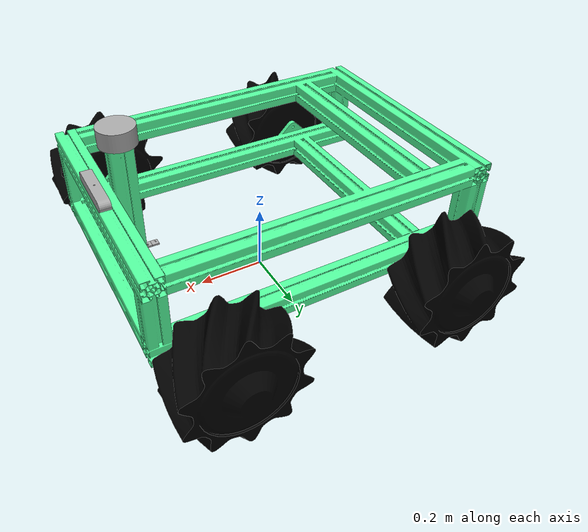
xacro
<?xml version="1.0"?>
<robot
  name="shigu">
  <link
    name="base_link">
    <inertial>
      <origin
        xyz="-0.010323 7.299E-08 0.083361"
        rpy="0 0 0" />
      <mass
        value="22.952" />
      <inertia
        ixx="0.32518"
        ixy="-2.7552E-14"
        ixz="6.3797E-12"
        iyy="0.75236"
        iyz="-3.0488E-13"
        izz="1.0394" />
    </inertial>
    <visual>
      <origin
        xyz="0 0 0"
        rpy="0 0 0" />
      <geometry>
        <mesh
          filename="/home/sjtu/zjd/ShiGu_ros2/src/shigu2_description/meshes/20210826/base_link.STL" />
      </geometry>
      <material
        name="">
        <color
          rgba="84 255 159 1" />
      </material>
    </visual>
    <collision>
      <origin
        xyz="0 0 0"
        rpy="0 0 0" />
      <geometry>
        <mesh
          filename="/home/sjtu/zjd/ShiGu_ros2/src/shigu2_description/meshes/20210826/base_link.STL" />
      </geometry>
    </collision>
  </link>

    <!-- Base footprint is on the ground under the robot -->
  <link name="base_footprint"/>

  <joint name="base_footprint_joint" type="fixed">
    <origin xyz="0 0 0.2" rpy="0 0 0" />
    <parent link="base_footprint" />
    <child link="base_link" />
  </joint>

  <!-- Inertial link stores the robot's inertial information -->
  <link name="inertial_link">
    <inertial>
      <mass value="46.034" />
      <origin xyz="-0.00065 -0.085 0.062" />
      <inertia ixx="0.6022" ixy="-0.02364" ixz="-0.1197" iyy="1.7386" iyz="-0.001544" izz="2.0296" />
    </inertial>
  </link>

  <joint name="inertial_joint" type="fixed">
    <origin xyz="0 0 0" rpy="0 0 0" />
    <parent link="base_link" />
    <child link="inertial_link" />
  </joint>

  <link
    name="front_left_Link">
    <inertial>
      <origin
        xyz="-2.2204E-16 0.077449 -2.2204E-16"
        rpy="0 0 0" />
      <mass
        value="26.853" />
      <inertia
        ixx="0.1921"
        ixy="-4.7186E-16"
        ixz="1.2875E-10"
        iyy="0.27647"
        iyz="2.3229E-16"
        izz="0.1921" />
    </inertial>
    <visual>
      <origin
        xyz="0 0 0"
        rpy="0 0 0" />
      <geometry>
        <mesh
          filename="/home/sjtu/zjd/ShiGu_ros2/src/shigu2_description/meshes/20210826/front_left_Link.STL" />
      </geometry>
      <material
        name="">
        <color
          rgba="0 0 0 1" />
      </material>
    </visual>
    <collision>
      <origin
        xyz="0 0 0"
        rpy="0 0 0" />
      <geometry>
        <mesh
          filename="/home/sjtu/zjd/ShiGu_ros2/src/shigu2_description/meshes/20210826/front_left_Link.STL" />
      </geometry>
    </collision>
  </link>
  <joint
    name="front_left_joint"
    type="continuous">
    <origin
      xyz="0.32272 0.406 -0.021887"
      rpy="0 0 0" />
    <parent
      link="base_link" />
    <child
      link="front_left_Link" />
    <axis
      xyz="0 1 0" />
  </joint>
  <link
    name="front_right_Link">
    <inertial>
      <origin
        xyz="0 -0.077449 -1.1102E-16"
        rpy="0 0 0" />
      <mass
        value="26.853" />
      <inertia
        ixx="0.1921"
        ixy="-4.5762E-16"
        ixz="-9.8199E-11"
        iyy="0.27647"
        iyz="-4.425E-16"
        izz="0.1921" />
    </inertial>
    <visual>
      <origin
        xyz="0 0 0"
        rpy="0 0 0" />
      <geometry>
        <mesh
          filename="/home/sjtu/zjd/ShiGu_ros2/src/shigu2_description/meshes/20210826/front_right_Link.STL" />
      </geometry>
      <material
        name="">
        <color
          rgba="0 0 0 1" />
      </material>
    </visual>
    <collision>
      <origin
        xyz="0 0 0"
        rpy="0 0 0" />
      <geometry>
        <mesh
          filename="/home/sjtu/zjd/ShiGu_ros2/src/shigu2_description/meshes/20210826/front_right_Link.STL" />
      </geometry>
    </collision>
  </link>
  <joint
    name="front_right_joint"
    type="continuous">
    <origin
      xyz="0.32272 -0.406 -0.021887"
      rpy="0 0 0" />
    <parent
      link="base_link" />
    <child
      link="front_right_Link" />
    <axis
      xyz="0 1 0" />
  </joint>
  <link
    name="rear_left_Link">
    <inertial>
      <origin
        xyz="0 0.077449 -1.1102E-16"
        rpy="0 0 0" />
      <mass
        value="26.853" />
      <inertia
        ixx="0.1921"
        ixy="3.6944E-16"
        ixz="-6.0088E-11"
        iyy="0.27647"
        iyz="5.305E-16"
        izz="0.1921" />
    </inertial>
    <visual>
      <origin
        xyz="0 0 0"
        rpy="0 0 0" />
      <geometry>
        <mesh
          filename="/home/sjtu/zjd/ShiGu_ros2/src/shigu2_description/meshes/20210826/rear_left_Link.STL" />
      </geometry>
      <material
        name="">
        <color
          rgba="0 0 0 1" />
      </material>
    </visual>
    <collision>
      <origin
        xyz="0 0 0"
        rpy="0 0 0" />
      <geometry>
        <mesh
          filename="/home/sjtu/zjd/ShiGu_ros2/src/shigu2_description/meshes/20210826/rear_left_Link.STL" />
      </geometry>
    </collision>
  </link>
  <joint
    name="rear_left_joint"
    type="continuous">
    <origin
      xyz="-0.32744 0.406 -0.021788"
      rpy="0 0 0" />
    <parent
      link="base_link" />
    <child
      link="rear_left_Link" />
    <axis
      xyz="0 1 0" />
  </joint>
  <link
    name="rear_right_Link">
    <inertial>
      <origin
        xyz="0 -0.077449 1.1102E-16"
        rpy="0 0 0" />
      <mass
        value="26.853" />
      <inertia
        ixx="0.1921"
        ixy="3.2556E-16"
        ixz="-1.1109E-10"
        iyy="0.27647"
        iyz="4.2064E-16"
        izz="0.1921" />
    </inertial>
    <visual>
      <origin
        xyz="0 0 0"
        rpy="0 0 0" />
      <geometry>
        <mesh
          filename="/home/sjtu/zjd/ShiGu_ros2/src/shigu2_description/meshes/20210826/rear_right_Link.STL" />
      </geometry>
      <material
        name="">
        <color
          rgba="0 0 0 1" />
      </material>
    </visual>
    <collision>
      <origin
        xyz="0 0 0"
        rpy="0 0 0" />
      <geometry>
        <mesh
          filename="/home/sjtu/zjd/ShiGu_ros2/src/shigu2_description/meshes/20210826/rear_right_Link.STL" />
      </geometry>
    </collision>
  </link>
  <joint
    name="rear_right_joint"
    type="continuous">
    <origin
      xyz="-0.32744 -0.406 -0.021788"
      rpy="0 0 0" />
    <parent
      link="base_link" />
    <child
      link="rear_right_Link" />
    <axis
      xyz="0 1 0" />
  </joint>

  <link
    name="camera_Link">
    <inertial>
      <origin
        xyz="3.6835E-06 -2.2204E-16 -0.015013"
        rpy="0 0 0" />
      <mass
        value="0.15658" />
      <inertia
        ixx="0.00038437"
        ixy="-7.4198E-21"
        ixz="-7.7187E-12"
        iyy="2.3887E-05"
        iyz="8.6645E-22"
        izz="0.00038561" />
    </inertial>
    <visual>
      <origin
        xyz="0 0 0"
        rpy="0 0 0" />
      <geometry>
        <mesh
          filename="/home/sjtu/zjd/ShiGu_ros2/src/shigu2_description/meshes/20210826/camera_Link.STL" />
      </geometry>
      <material
        name="">
        <color
          rgba="169 169 169 1" />
      </material>
    </visual>
    <collision>
      <origin
        xyz="0 0 0"
        rpy="0 0 0" />
      <geometry>
        <mesh
          filename="/home/sjtu/zjd/ShiGu_ros2/src/shigu2_description/meshes/20210826/camera_Link.STL" />
      </geometry>
    </collision>
  </link>
  <joint
    name="camera_joint"
    type="fixed">
    <origin
      xyz="0.46706 -0.00012012 0.24821"
      rpy="0 0 0" />
    <parent
      link="base_link" />
    <child
      link="camera_Link" />
    <axis
      xyz="0 0 0" />
  </joint>
  <link
    name="laser_Link">
    <inertial>
      <origin
        xyz="0 -2.2204E-16 0.025"
        rpy="0 0 0" />
      <mass
        value="1.0603" />
      <inertia
        ixx="0.00088357"
        ixy="2.8635E-32"
        ixz="4.8371E-20"
        iyy="0.00088357"
        iyz="1.2386E-19"
        izz="0.0013254" />
    </inertial>
    <visual>
      <origin
        xyz="0 0 0"
        rpy="0 0 0" />
      <geometry>
        <mesh
          filename="/home/sjtu/zjd/ShiGu_ros2/src/shigu2_description/meshes/20210826/laser_Link.STL" />
      </geometry>
      <material
        name="">
        <color
          rgba="169 169 169 1" />
      </material>
    </visual>
    <collision>
      <origin
        xyz="0 0 0"
        rpy="0 0 0" />
      <geometry>
        <mesh
          filename="/home/sjtu/zjd/ShiGu_ros2/src/shigu2_description/meshes/20210826/laser_Link.STL" />
      </geometry>
    </collision>

  </link>
  <joint
    name="laser_joint"
    type="fixed">
    <origin
      xyz="0.39256 0 0.34821"
      rpy="0 0 0" />
    <parent
      link="base_link" />
    <child
      link="laser_Link" />
    <axis
      xyz="0 0 0" />
  </joint>
  <link
    name="imu_Link">
    <inertial>
      <origin
        xyz="-3.2019E-09 -9.7714E-09 -0.0025"
        rpy="0 0 0" />
      <mass
        value="0.0019328" />
      <inertia
        ixx="6.9807E-08"
        ixy="1.5767E-11"
        ixz="1.0698E-16"
        iyy="7.0624E-08"
        iyz="5.7701E-16"
        izz="1.3238E-07" />
    </inertial>
    <visual>
      <origin
        xyz="0 0 0"
        rpy="0 0 0" />
      <geometry>
        <mesh
          filename="/home/sjtu/zjd/ShiGu_ros2/src/shigu2_description/meshes/20210826/imu_Link.STL" />
      </geometry>
      <material
        name="">
        <color
          rgba="169 169 169 1" />
      </material>
    </visual>
    <collision>
      <origin
        xyz="0 0 0"
        rpy="0 0 0" />
      <geometry>
        <mesh
          filename="/home/sjtu/zjd/ShiGu_ros2/src/shigu2_description/meshes/20210826/imu_Link.STL" />
      </geometry>
    </collision>
  </link>
  <joint
    name="imu_joint"
    type="fixed">
    <origin
      xyz="0.35255 -1.683E-05 0.013212"
      rpy="0 0 0" />
    <parent
      link="base_link" />
    <child
      link="imu_Link" />
    <axis
      xyz="0 0 0" />
  </joint>
  <link
    name="gps_Link">
    <inertial>
      <origin
        xyz="0 0 0"
        rpy="0 0 0" />
      <mass
        value="0" />
      <inertia
        ixx="0"
        ixy="0"
        ixz="0"
        iyy="0"
        iyz="0"
        izz="0" />
    </inertial>
    <visual>
      <origin
        xyz="0 0 0"
        rpy="0 0 0" />
      <geometry>
        <mesh
          filename="/home/sjtu/zjd/ShiGu_ros2/src/shigu2_description/meshes/20210826/gps_Link.STL" />
      </geometry>
      <material
        name="">
        <color
          rgba="169 169 169 1" />
      </material>
    </visual>
    <collision>
      <origin
        xyz="0 0 0"
        rpy="0 0 0" />
      <geometry>
        <mesh
          filename="/home/sjtu/zjd/ShiGu_ros2/src/shigu2_description/meshes/20210826/gps_Link.STL" />
      </geometry>
    </collision>
  </link>
  <joint
    name="gps_joint"
    type="fixed">
    <origin
      xyz="0.332672458831791 0 0.0132124363075545"
      rpy="0 0 0" />
    <parent
      link="base_link" />
    <child
      link="gps_Link" />
    <axis
      xyz="0 0 0" />
  </joint>

 <!-- the front section is created by solidworks automatically,the behind section is created by myself -->
  <!-- color in gazebo -->
  <gazebo reference="base_link">
    <material>Gazebo/Gray</material>
  </gazebo>
  <gazebo reference="front_left_Link">
    <material>Gazebo/Black</material>
  </gazebo>
  <gazebo reference="rear_left_Link">
    <material>Gazebo/Black</material>
  </gazebo>
  <gazebo reference="front_right_Link">
    <material>Gazebo/Black</material>
  </gazebo>
  <gazebo reference="rear_right_Link">
    <material>Gazebo/Black</material>
  </gazebo>
  <gazebo reference="laser_Link">
    <material>Gazebo/DarkGrey</material>
  </gazebo>
  <gazebo reference="imu_Link">
    <material>Gazebo/DarkGrey</material>
  </gazebo>
  <gazebo reference="camera_Link">
    <material>Gazebo/DarkGrey</material>
  </gazebo>
  <gazebo reference="gps_Link">
    <material>Gazebo/DarkGrey</material>
  </gazebo>

<!-- motors and transmissions for the six wheels -->

<!--world/cloister parametres-->

  <!--control plugin-->
  <gazebo>
    <plugin name="skid_steer_drive_controller" filename="libgazebo_ros_diff_drive.so">
      <ros>
        <namespace>/</namespace>
        <argument>/cmd_vel:=cmd_vel</argument>
        <argument>/odom:=odom</argument>
      </ros>
      <update_rate>100.0</update_rate>
      <num_wheel_pairs>2</num_wheel_pairs>

      <left_joint>front_left_joint</left_joint>
      <left_joint>rear_left_joint</left_joint>
      <wheel_separation>0.65</wheel_separation>
      <wheel_diameter>0.4</wheel_diameter>

      <right_joint>front_right_joint</right_joint>
      <right_joint>rear_right_joint</right_joint>
      <wheel_separation>0.65</wheel_separation>
      <wheel_diameter>0.4</wheel_diameter>

      <max_wheel_torque>18</max_wheel_torque>
      <max_wheel_acceleration>1.0</max_wheel_acceleration>

      <publish_odom>true</publish_odom>
      <publish_odom_tf>false</publish_odom_tf>
      <publish_wheel_tf>true</publish_wheel_tf>

      <robot_base_frame>base_footprint</robot_base_frame>
      <odometry_frame>odom</odometry_frame>
    </plugin>
  </gazebo>

  <!--six axis imu sensor-->
  <gazebo reference="imu_Link">
    <sensor name="my_imu" type="imu">
      <always_on>true</always_on>
      <update_rate>30</update_rate>
      <plugin name="my_imu_plugin" filename="libgazebo_ros_imu_sensor.so">
        <ros>
          <namespace>/imu</namespace>
          <argument>~/out:=data</argument>
        </ros>
      </plugin>
    </sensor>
  </gazebo>

  <!--gps sensor is not allowed in ros2-->

  <!-- laser sensor -->
  <gazebo reference="laser_Link">
    <sensor type="ray" name="rplidar">
      <pose>0 0 0 0 0 0</pose>
      <visualize>false</visualize>
      <update_rate>5.5</update_rate>
      <ray>
        <scan>
          <horizontal>
            <samples>360</samples>
            <resolution>1</resolution>
            <min_angle>-3.14</min_angle>
            <max_angle>3.14</max_angle>
          </horizontal>
        </scan>
        <range>
          <min>0.4</min>
          <max>10.0</max>
          <resolution>0.01</resolution>
        </range>
        <noise>
          <type>gaussian</type>
          <mean>0.0</mean>
          <stddev>0.01</stddev>
        </noise>
      </ray>
      <update_rate>30</update_rate>
      <plugin name="gazebo_ros_head_hokuyo_controller" filename="libgazebo_ros_ray_sensor.so">
        <ros>
          <namespace>/</namespace>
          <argument>~/out:=scan</argument>
        </ros>
        <output_type>sensor_msgs/LaserScan</output_type>
      </plugin>
    </sensor>
  </gazebo>

  <!-- stereo camera -->

  <!-- single camera -->
  <gazebo reference="camera_Link">
    <sensor type="camera" name="camera_sensor">
      <update_rate>30.0</update_rate>
      <always_on>1</always_on>

      <camera name="camera">
        <horizontal_fov>1.3962634</horizontal_fov>
        <image>
          <width>800</width>
          <height>800</height>
          <format>R8G8B8</format>
        </image>
        <clip>
          <near>0.02</near>
          <far>10</far>
        </clip>
        <distortion>
          <k1>0.0</k1>
          <k2>0.0</k2>
          <k3>0.0</k3>
          <p1>0.0</p1>
          <p2>0.0</p2>
          <center>0.5 0.5</center>
        </distortion>
      </camera>
      <plugin name="camera_controller" filename="libgazebo_ros_camera.so">
        <ros>
          <namespace>/</namespace>
          <argument>camera/image_raw:=camera/image</argument>
          <argument>camera/camera_info:=image/camera_info</argument>
        </ros>
        <camera_name>zed_node</camera_name>
        <frame_name>camera_Link</frame_name>
        <hack_baseline>0.07</hack_baseline>
      </plugin>
    </sensor>
  </gazebo>

</robot>
